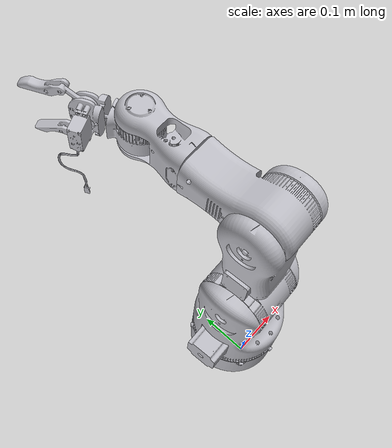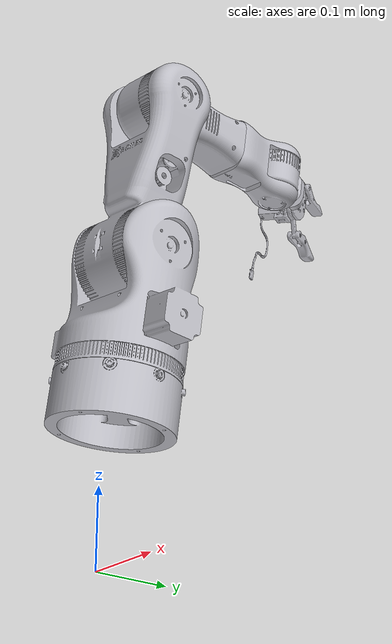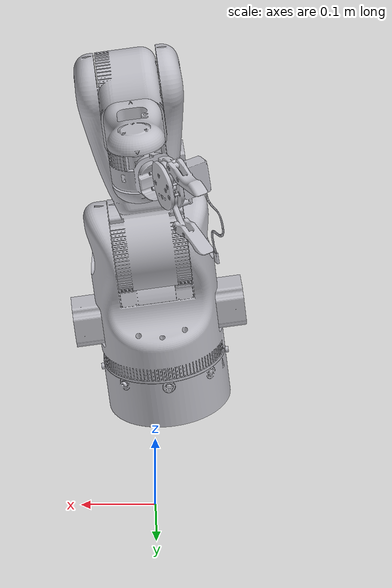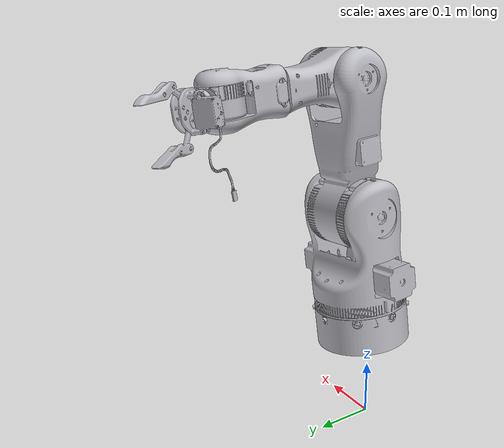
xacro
<?xml version="1.0" ?>
<robot name="Robot" xmlns:xacro="http://www.ros.org/wiki/xacro">

<xacro:include filename="$(find Robot_description)/urdf/materials.xacro" />
<xacro:include filename="$(find Robot_description)/urdf/Robot.trans" />
<xacro:include filename="$(find Robot_description)/urdf/Robot.gazebo" />
<link name="base_link">
  <inertial>
    <origin xyz="-0.014292847308119921 0.029643182358033662 0.2156805462258431" rpy="0 0 0"/>
    <mass value="0.6555115079798821"/>
    <inertia ixx="0.00156" iyy="0.00156" izz="0.002692" ixy="1e-06" iyz="4.7e-05" ixz="3.6e-05"/>
  </inertial>
  <visual>
    <origin xyz="0 0 0" rpy="0 0 0"/>
    <geometry>
      <mesh filename="package://Robot_description/meshes/base_link.stl" scale="0.001 0.001 0.001"/>
    </geometry>
    <material name="silver"/>
  </visual>
  <collision>
    <origin xyz="0 0 0" rpy="0 0 0"/>
    <geometry>
      <mesh filename="package://Robot_description/meshes/base_link.stl" scale="0.001 0.001 0.001"/>
    </geometry>
  </collision>
</link>

<link name="link5_1">
  <inertial>
    <origin xyz="-0.5787989415015174 0.12275388985793549 0.31169295695122023" rpy="0 0 0"/>
    <mass value="0.1607410659493192"/>
    <inertia ixx="9.8e-05" iyy="9.1e-05" izz="8.5e-05" ixy="-7e-06" iyz="-2e-06" ixz="-1.3e-05"/>
  </inertial>
  <visual>
    <origin xyz="-0.682077 0.098996 -0.519354" rpy="0 0 0"/>
    <geometry>
      <mesh filename="package://Robot_description/meshes/link5_1.stl" scale="0.001 0.001 0.001"/>
    </geometry>
    <material name="silver"/>
  </visual>
  <collision>
    <origin xyz="-0.682077 0.098996 -0.519354" rpy="0 0 0"/>
    <geometry>
      <mesh filename="package://Robot_description/meshes/link5_1.stl" scale="0.001 0.001 0.001"/>
    </geometry>
  </collision>
</link>

<link name="Servo_Gear_1">
  <inertial>
    <origin xyz="0.042213503915512485 0.0051962019055995234 0.014177807555517785" rpy="0 0 0"/>
    <mass value="0.015458635829547249"/>
    <inertia ixx="4e-06" iyy="1.5e-05" izz="1.2e-05" ixy="-1e-06" iyz="-1e-06" ixz="-6e-06"/>
  </inertial>
  <visual>
    <origin xyz="-0.15265 -0.037988 -0.883301" rpy="0 0 0"/>
    <geometry>
      <mesh filename="package://Robot_description/meshes/Servo_Gear_1.stl" scale="0.001 0.001 0.001"/>
    </geometry>
    <material name="silver"/>
  </visual>
  <collision>
    <origin xyz="-0.15265 -0.037988 -0.883301" rpy="0 0 0"/>
    <geometry>
      <mesh filename="package://Robot_description/meshes/Servo_Gear_1.stl" scale="0.001 0.001 0.001"/>
    </geometry>
  </collision>
</link>

<link name="Idol_Gear_1">
  <inertial>
    <origin xyz="0.013036481081125345 0.01802179741945479 0.0390997266023575" rpy="0 0 0"/>
    <mass value="0.01558102330322005"/>
    <inertia ixx="1.3e-05" iyy="1.5e-05" izz="5e-06" ixy="-2e-06" iyz="-4e-06" ixz="-5e-06"/>
  </inertial>
  <visual>
    <origin xyz="-0.129063 -0.045204 -0.896558" rpy="0 0 0"/>
    <geometry>
      <mesh filename="package://Robot_description/meshes/Idol_Gear_1.stl" scale="0.001 0.001 0.001"/>
    </geometry>
    <material name="silver"/>
  </visual>
  <collision>
    <origin xyz="-0.129063 -0.045204 -0.896558" rpy="0 0 0"/>
    <geometry>
      <mesh filename="package://Robot_description/meshes/Idol_Gear_1.stl" scale="0.001 0.001 0.001"/>
    </geometry>
  </collision>
</link>

<link name="link6_1">
  <inertial>
    <origin xyz="-0.5075102476235241 0.14054545458469847 0.47602765621186643" rpy="0 0 0"/>
    <mass value="0.01865052429923146"/>
    <inertia ixx="7e-06" iyy="1.2e-05" izz="9e-06" ixy="-1e-06" iyz="-1e-06" ixz="2e-06"/>
  </inertial>
  <visual>
    <origin xyz="-0.646863 0.103905 -0.410506" rpy="0 0 0"/>
    <geometry>
      <mesh filename="package://Robot_description/meshes/link6_1.stl" scale="0.001 0.001 0.001"/>
    </geometry>
    <material name="silver"/>
  </visual>
  <collision>
    <origin xyz="-0.646863 0.103905 -0.410506" rpy="0 0 0"/>
    <geometry>
      <mesh filename="package://Robot_description/meshes/link6_1.stl" scale="0.001 0.001 0.001"/>
    </geometry>
  </collision>
</link>

<link name="link1_1">
  <inertial>
    <origin xyz="0.0023156662716766075 0.0033004673099537654 0.08017793458058617" rpy="0 0 0"/>
    <mass value="1.9598700732514862"/>
    <inertia ixx="0.012654" iyy="0.009611" izz="0.008747" ixy="-0.001148" iyz="-9e-06" ixz="-7.9e-05"/>
  </inertial>
  <visual>
    <origin xyz="0.013437 -0.030771 -0.24298" rpy="0 0 0"/>
    <geometry>
      <mesh filename="package://Robot_description/meshes/link1_1.stl" scale="0.001 0.001 0.001"/>
    </geometry>
    <material name="silver"/>
  </visual>
  <collision>
    <origin xyz="0.013437 -0.030771 -0.24298" rpy="0 0 0"/>
    <geometry>
      <mesh filename="package://Robot_description/meshes/link1_1.stl" scale="0.001 0.001 0.001"/>
    </geometry>
  </collision>
</link>

<link name="link2_1">
  <inertial>
    <origin xyz="0.3566543899352841 -0.13176479567010627 0.10158651938434693" rpy="0 0 0"/>
    <mass value="1.9144645074140343"/>
    <inertia ixx="0.016598" iyy="0.015993" izz="0.003586" ixy="-0.00025" iyz="-0.000575" ixz="-0.000586"/>
  </inertial>
  <visual>
    <origin xyz="0.360772 -0.174058 -0.385169" rpy="0 0 0"/>
    <geometry>
      <mesh filename="package://Robot_description/meshes/link2_1.stl" scale="0.001 0.001 0.001"/>
    </geometry>
    <material name="silver"/>
  </visual>
  <collision>
    <origin xyz="0.360772 -0.174058 -0.385169" rpy="0 0 0"/>
    <geometry>
      <mesh filename="package://Robot_description/meshes/link2_1.stl" scale="0.001 0.001 0.001"/>
    </geometry>
  </collision>
</link>

<link name="link3_1">
  <inertial>
    <origin xyz="0.0625690601145066 0.028676445255615537 0.7485166997896099" rpy="0 0 0"/>
    <mass value="0.7274515218419347"/>
    <inertia ixx="0.001771" iyy="0.002065" izz="0.000964" ixy="7.2e-05" iyz="0.000116" ixz="-0.000543"/>
  </inertial>
  <visual>
    <origin xyz="0.042994 -0.012782 0.08255" rpy="0 0 0"/>
    <geometry>
      <mesh filename="package://Robot_description/meshes/link3_1.stl" scale="0.001 0.001 0.001"/>
    </geometry>
    <material name="silver"/>
  </visual>
  <collision>
    <origin xyz="0.042994 -0.012782 0.08255" rpy="0 0 0"/>
    <geometry>
      <mesh filename="package://Robot_description/meshes/link3_1.stl" scale="0.001 0.001 0.001"/>
    </geometry>
  </collision>
</link>

<link name="link4_1">
  <inertial>
    <origin xyz="0.5607858303557733 -0.20177401958703842 -0.11984578157368675" rpy="0 0 0"/>
    <mass value="0.32455418653717066"/>
    <inertia ixx="0.000539" iyy="0.000673" izz="0.00038" ixy="4.2e-05" iyz="1e-05" ixz="-9.2e-05"/>
  </inertial>
  <visual>
    <origin xyz="0.478036 -0.227798 -0.908418" rpy="0 0 0"/>
    <geometry>
      <mesh filename="package://Robot_description/meshes/link4_1.stl" scale="0.001 0.001 0.001"/>
    </geometry>
    <material name="silver"/>
  </visual>
  <collision>
    <origin xyz="0.478036 -0.227798 -0.908418" rpy="0 0 0"/>
    <geometry>
      <mesh filename="package://Robot_description/meshes/link4_1.stl" scale="0.001 0.001 0.001"/>
    </geometry>
  </collision>
</link>

<joint name="Joint5" type="revolute">
  <origin xyz="1.160113 -0.326794 -0.389064" rpy="0 0 0"/>
  <parent link="link4_1"/>
  <child link="link5_1"/>
  <axis xyz="0.83757 -0.303178 -0.454488"/>
  <limit upper="1.832596" lower="-1.832596" effort="100" velocity="100"/>
</joint>

<joint name="Servo Joint" type="revolute">
  <origin xyz="-0.494213 0.141893 0.472795" rpy="0 0 0"/>
  <parent link="link6_1"/>
  <child link="Servo_Gear_1"/>
  <axis xyz="-0.08842 -0.921499 0.378182"/>
  <limit upper="0.523599" lower="-0.610865" effort="100" velocity="100"/>
</joint>

<joint name="Idol Joint" type="revolute">
  <origin xyz="-0.5178 0.149109 0.486052" rpy="0 0 0"/>
  <parent link="link6_1"/>
  <child link="Idol_Gear_1"/>
  <axis xyz="-0.08842 -0.921499 0.378182"/>
  <limit upper="0.959931" lower="-0.174533" effort="100" velocity="100"/>
</joint>

<joint name="Joint6" type="revolute">
  <origin xyz="-0.035214 -0.004909 -0.108848" rpy="0 0 0"/>
  <parent link="link5_1"/>
  <child link="link6_1"/>
  <axis xyz="0.533765 0.276723 0.799074"/>
  <limit upper="6.283185" lower="0.0" effort="100" velocity="100"/>
</joint>

<joint name="Joint1" type="revolute">
  <origin xyz="-0.013437 0.030771 0.24298" rpy="0 0 0"/>
  <parent link="base_link"/>
  <child link="link1_1"/>
  <axis xyz="0.031801 0.041072 0.99865"/>
  <limit upper="6.283185" lower="0.0" effort="100" velocity="100"/>
</joint>

<joint name="Joint2" type="revolute">
  <origin xyz="-0.347335 0.143287 0.142189" rpy="0 0 0"/>
  <parent link="link1_1"/>
  <child link="link2_1"/>
  <axis xyz="0.316319 0.947385 -0.049037"/>
  <limit upper="1.919862" lower="-1.919862" effort="100" velocity="100"/>
</joint>

<joint name="Joint3" type="revolute">
  <origin xyz="0.317778 -0.161276 -0.467719" rpy="0 0 0"/>
  <parent link="link2_1"/>
  <child link="link3_1"/>
  <axis xyz="-0.316319 -0.947385 0.049037"/>
  <limit upper="3.665191" lower="-0.523599" effort="100" velocity="100"/>
</joint>

<joint name="Joint4" type="revolute">
  <origin xyz="-0.435042 0.215016 0.990968" rpy="0 0 0"/>
  <parent link="link3_1"/>
  <child link="link4_1"/>
  <axis xyz="0.445442 -0.102692 0.889402"/>
  <limit upper="6.283185" lower="0.0" effort="100" velocity="100"/>
</joint>

</robot>

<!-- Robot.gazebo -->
<robot name="Robot" xmlns:xacro="http://www.ros.org/wiki/xacro" >

<xacro:property name="body_color" value="Gazebo/Silver" />

<gazebo>
  <plugin name="control" filename="libgazebo_ros_control.so"/>
</gazebo>
<gazebo reference="base_link">
  <material>${body_color}</material>
  <mu1>0.2</mu1>
  <mu2>0.2</mu2>
  <selfCollide>true</selfCollide>
  <gravity>true</gravity>
</gazebo>

<gazebo reference="link5_1">
  <material>${body_color}</material>
  <mu1>0.2</mu1>
  <mu2>0.2</mu2>
  <selfCollide>true</selfCollide>
</gazebo>

<gazebo reference="Servo_Gear_1">
  <material>${body_color}</material>
  <mu1>0.2</mu1>
  <mu2>0.2</mu2>
  <selfCollide>true</selfCollide>
</gazebo>

<gazebo reference="Idol_Gear_1">
  <material>${body_color}</material>
  <mu1>0.2</mu1>
  <mu2>0.2</mu2>
  <selfCollide>true</selfCollide>
</gazebo>

<gazebo reference="link6_1">
  <material>${body_color}</material>
  <mu1>0.2</mu1>
  <mu2>0.2</mu2>
  <selfCollide>true</selfCollide>
</gazebo>

<gazebo reference="link1_1">
  <material>${body_color}</material>
  <mu1>0.2</mu1>
  <mu2>0.2</mu2>
  <selfCollide>true</selfCollide>
</gazebo>

<gazebo reference="link2_1">
  <material>${body_color}</material>
  <mu1>0.2</mu1>
  <mu2>0.2</mu2>
  <selfCollide>true</selfCollide>
</gazebo>

<gazebo reference="link3_1">
  <material>${body_color}</material>
  <mu1>0.2</mu1>
  <mu2>0.2</mu2>
  <selfCollide>true</selfCollide>
</gazebo>

<gazebo reference="link4_1">
  <material>${body_color}</material>
  <mu1>0.2</mu1>
  <mu2>0.2</mu2>
  <selfCollide>true</selfCollide>
</gazebo>

</robot>
